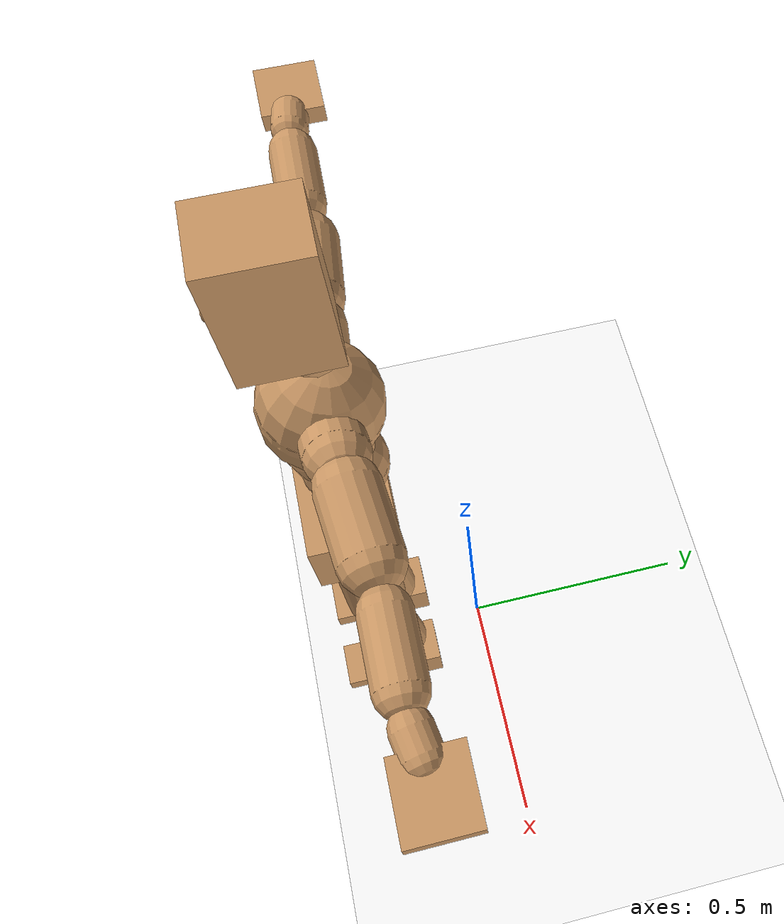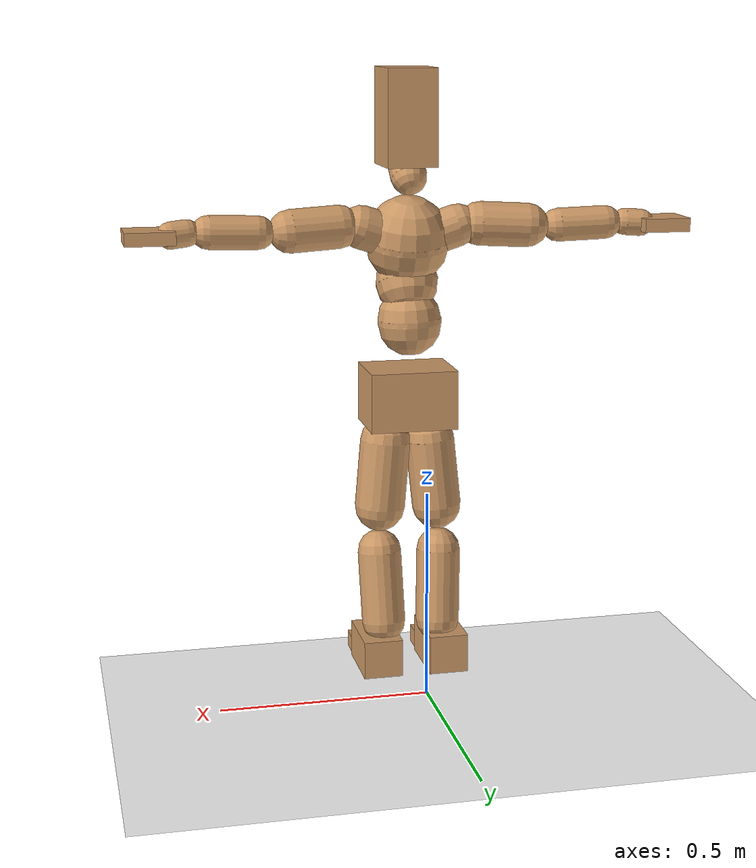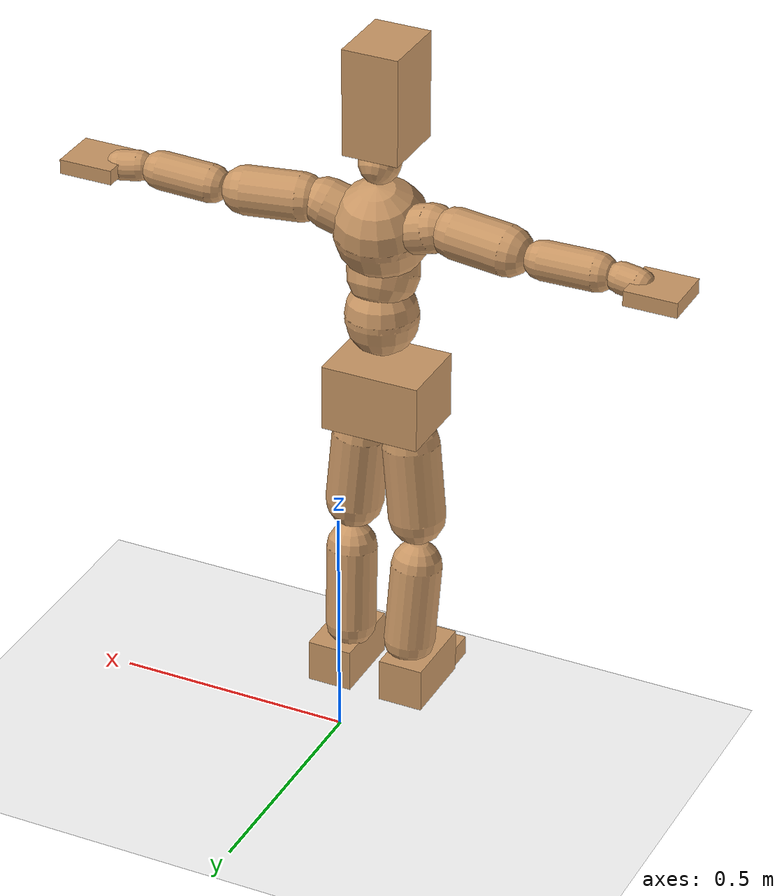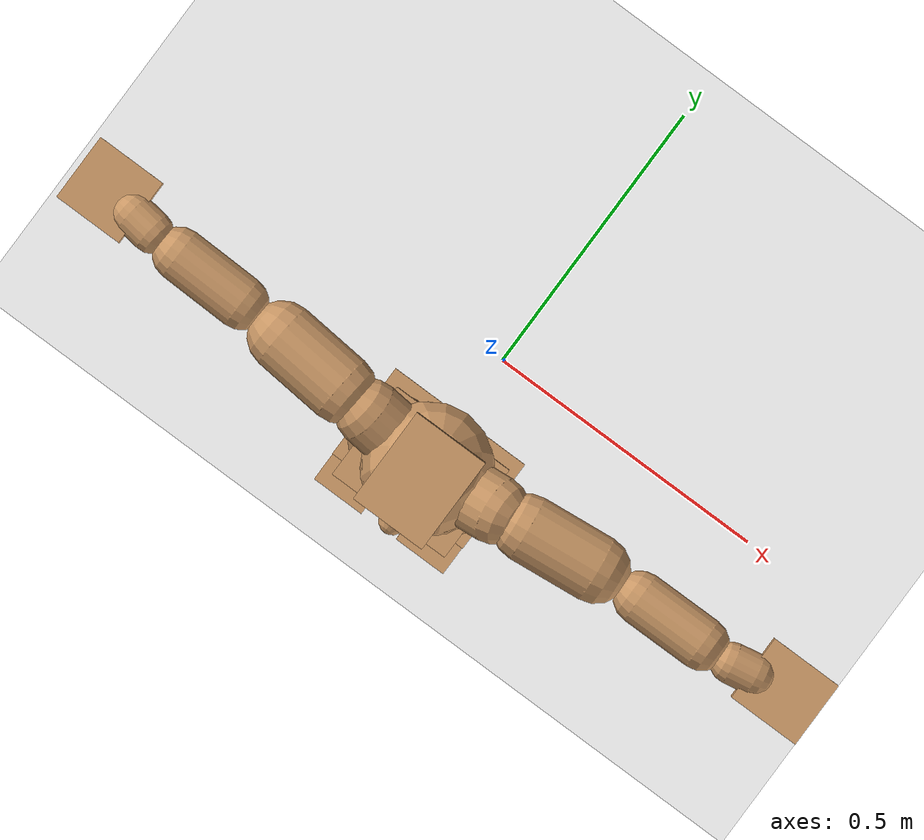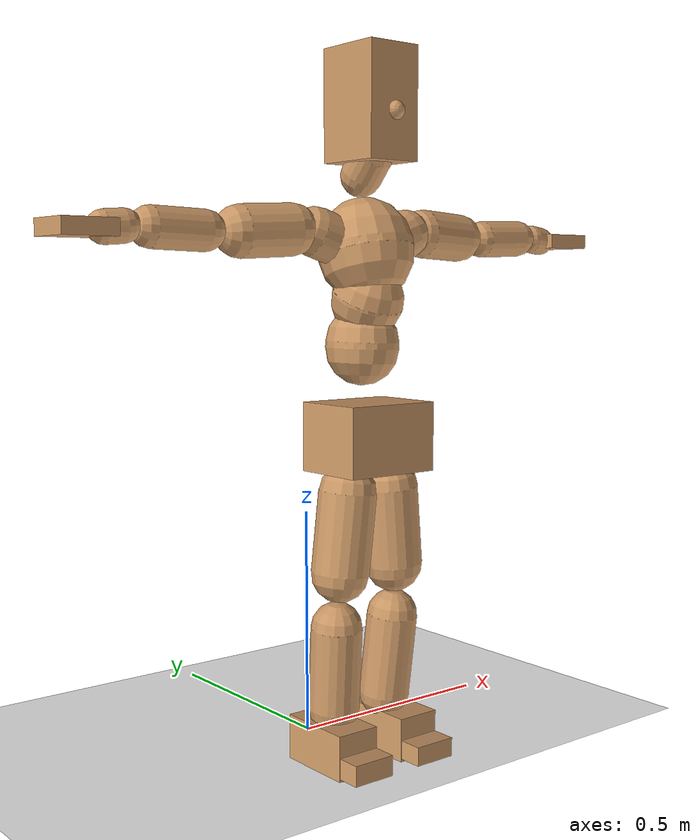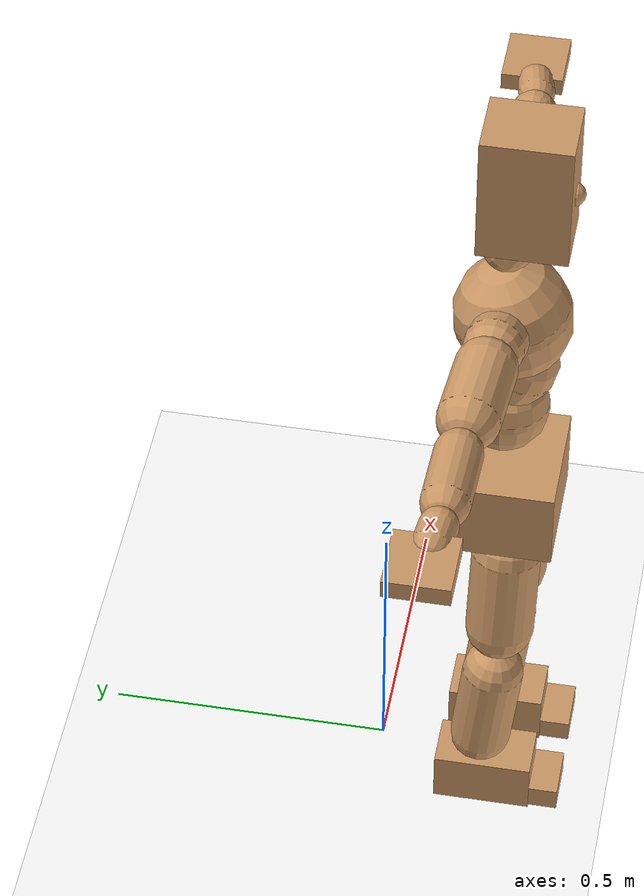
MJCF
<mujoco model="humanoid">
  <option integrator="implicitfast" />

  <visual>
    <global offwidth="1280" offheight="960" />
    <headlight active="1" ambient="0.34 0.34 0.34" diffuse="0.5 0.5 0.5" />
  </visual>

  <default>
    <joint damping="2" stiffness="2" armature="0.01" limited="true" solimplimit="0 .99 .01" />
    <geom condim="1" friction="0.7 0.005 0.0001" solimp=".99 .99 .003" solref="0.015 1" margin="0.001" rgba="0.8 0.6 .4 1" />
    <default class="smplcontact">
      <geom condim="3" friction="1. 0.005 0.0001" solref="0.015 1" solimp="0.98 0.98 0.001" priority="1" />
    </default>
    <default class="stiff_medium">
      <joint stiffness="10" />
    </default>
    <default class="stiff_medium_higher">
      <joint stiffness="50" />
    </default>
    <default class="stiff_high">
      <joint stiffness="100" />
    </default>
  </default>

  <asset>
    <texture type="skybox" builtin="gradient" rgb1="0.99 0.99 0.99" rgb2="0.608 0.828 0.892" width="100" />
    <texture builtin="flat" height="1278" mark="cross" markrgb="1 1 1" name="texgeom" random="0.01" rgb1="0.8 0.6 0.4" rgb2="0.8 0.6 0.4" type="cube" width="127" />
    <texture name="texplane" type="2d" builtin="checker" markrgb="1 1 1" rgb1="0.756 0.772 0.76" rgb2="0.6 0.6 0.6" width="100" height="100" />
    <material name="MatPlane" reflectance="0.5" texture="texplane" texrepeat="1 1" texuniform="true" />
    <material name="geom" texture="texgeom" texuniform="true" />
  </asset>

  <worldbody>
    <light name="tracking_light" pos="0 0 7" dir="0 0 -1" directional="true" cutoff="100" exponent="1" diffuse="1 1 1" specular="0.1 0.1 0.1" mode="trackcom" />
    <camera name="back" pos="0 3 2.4" xyaxes="-1 0 0 0 -1 2" mode="trackcom" />
    <camera name="side" pos="-3 0 2.4" xyaxes="0 -1 0 1 0 2" mode="trackcom" />
    <camera name="front_side" pos="-2.8 -2.8 0.8" xyaxes="0.5 -0.5 0 0.1 0.1 1" mode="trackcom" />
    <geom condim="3" name="floor" pos="0 0 0" rgba="1 1 1 1" size="100 100 .2" type="plane" material="MatPlane" />
    <body name="Pelvis" pos="-0.0018 -0.2233 0.703364" euler="90 0 0">
      <site name="Pelvis" size="0.01" />
      <freejoint name="Pelvis" />
      <geom type="box" pos="-0.0000 -0.0121 -0.0055" size="0.1069 0.0722 0.083" quat="1.0000 0.0000 0.0000 0.0000" density="3165.830099" name="Pelvis" />
      <body name="L_Hip" pos="0.0512563 -0.0674075 -0.005015">
        <joint name="L_Hip_x" type="hinge" pos="0 0 0" axis="1 0 0" stiffness="6.080351326530612" range="-160.0 22.92" class="stiff_medium" damping="8.014355578635632" armature="0.00469489649831775"/>
        <joint name="L_Hip_y" type="hinge" pos="0 0 0" axis="0 1 0" stiffness="6.118900408163266" range="-70.0 70.0" class="stiff_medium" damping="6.474405177482236" armature="0.006850564579591099"/>
        <joint name="L_Hip_z" type="hinge" pos="0 0 0" axis="0 0 1" stiffness="6.115600306122449" range="-28.65 90.0" class="stiff_medium" damping="5.3564579991757" armature="0.0046915496207640605"/>
        <geom type="capsule" density="2040.816327" fromto="0.00508875 -0.0553125 -0.00066375 0.0202075 -0.221398 -0.002655" size="0.0615" name="L_Hip" />
        <body name="L_Knee" pos="0.0252962 -0.27671 -0.00331875">
          <joint name="L_Knee_x" type="hinge" pos="0 0 0" axis="1 0 0" range="-5.16 171.89" damping="4.486905944084203" armature="0.004992045725371326" stiffness="1.260275224489796"/>
          <joint name="L_Knee_y" type="hinge" pos="0 0 0" axis="0 1 0" range="-4.58 6.88" damping="5.357742827119133" armature="0.007269150680716722" stiffness="1.2340423877551019"/>
          <joint name="L_Knee_z" type="hinge" pos="0 0 0" axis="0 0 1" range="-6.88 4.58" damping="4.499596532940237" armature="0.004974648540757286" stiffness="1.271846693877551"/>
          <geom type="capsule" density="1234.567901" fromto="-0.00199125 -0.058705 -0.00641625 -0.00803875 -0.23482 -0.0258125" size="0.0541" name="L_Knee" />
          <body name="L_Ankle" pos="-0.01003 -0.293525 -0.0322288">
            <joint name="L_Ankle_x" type="hinge" pos="0 0 0" axis="1 0 0" range="-45.84 45.84" class="stiff_medium" damping="4.311077671679792" armature="0.00700014434424084" stiffness="7.375002959183673"/>
            <joint name="L_Ankle_y" type="hinge" pos="0 0 0" axis="0 1 0" range="-74.48 22.92" class="stiff_medium" damping="2.1726537987814396" armature="0.007111746177038802" stiffness="7.37500469387755"/>
            <joint name="L_Ankle_z" type="hinge" pos="0 0 0" axis="0 0 1" range="-4.58 4.58" class="stiff_medium" damping="4.563055593809299" armature="0.007842354208817714" stiffness="7.375009183673469"/>
            <geom type="box" pos="0.0171838 -0.0176263 0.0178475" size="0.0483 0.0464 0.085" quat="1.0000 0.0000 0.0000 0.0000" density="449.071558" name="L_Ankle" class="smplcontact" />
            <body name="L_Toe" pos="0.01947 -0.0411525 0.0879838">
              <joint name="L_Toe_x" type="hinge" pos="0 0 0" axis="1 0 0" range="-91.67 22.92" armature="0.008265992273600073" damping="1.5615604894027983" stiffness="1.475002081632653"/>
              <joint name="L_Toe_y" type="hinge" pos="0 0 0" axis="0 1 0" range="-4.58 4.58" armature="0.008778251611742472" damping="1.6092196828189316" stiffness="1.475002142857143"/>
              <joint name="L_Toe_z" type="hinge" pos="0 0 0" axis="0 0 1" range="-4.58 4.58" armature="0.009814011694953264" damping="1.7015091683594339" stiffness="1.4749999999999999"/>
              <geom type="box" pos="-0.0022125 0.00405625 0.01829" size="0.0478 0.02 0.0496" quat="1.0000 0.0000 0.0000 0.0000" density="423.206892" name="L_Toe" class="smplcontact" />
            </body>
          </body>
        </body>
      </body>
      <body name="R_Hip" pos="-0.0499288 -0.0667438 -0.00317125">
        <joint name="R_Hip_x" type="hinge" pos="0 0 0" axis="1 0 0" stiffness="6.080351326530612" range="-160.0 22.92" class="stiff_medium" damping="8.014355578635632" armature="0.00469489649831775"/>
        <joint name="R_Hip_y" type="hinge" pos="0 0 0" axis="0 1 0" stiffness="6.118900408163266" range="-70.0 70.0" class="stiff_medium" damping="6.474405177482236" armature="0.006850564579591099"/>
        <joint name="R_Hip_z" type="hinge" pos="0 0 0" axis="0 0 1" stiffness="6.115600306122449" range="-90.0 28.65" class="stiff_medium" damping="5.3564579991757" armature="0.0046915496207640605"/>
        <geom type="capsule" density="2040.816327" fromto="-0.00567875 -0.0564188 -0.0013275 -0.0225675 -0.225749 -0.00523625" size="0.0606" name="R_Hip" />
        <body name="R_Knee" pos="-0.0282463 -0.282168 -0.00656375">
          <joint name="R_Knee_x" type="hinge" pos="0 0 0" axis="1 0 0" range="-5.16 171.89" damping="4.486905944084203" armature="0.004992045725371326" stiffness="1.260275224489796"/>
          <joint name="R_Knee_y" type="hinge" pos="0 0 0" axis="0 1 0" range="-6.88 4.58" damping="5.357742827119133" armature="0.007269150680716722" stiffness="1.2340423877551019"/>
          <joint name="R_Knee_z" type="hinge" pos="0 0 0" axis="0 0 1" range="-4.58 6.88" damping="4.499596532940237" armature="0.004974648540757286" stiffness="1.271846693877551"/>
          <geom type="capsule" density="1234.567901" fromto="0.00236 -0.0587787 -0.00626875 0.0092925 -0.235041 -0.0249275" size="0.0541" name="R_Knee" />
          <body name="R_Ankle" pos="0.0116525 -0.29382 -0.0311962">
            <joint name="R_Ankle_x" type="hinge" pos="0 0 0" axis="1 0 0" range="-45.84 45.84" class="stiff_medium" damping="4.311077671679792" armature="0.00700014434424084" stiffness="7.375002959183673"/>
            <joint name="R_Ankle_y" type="hinge" pos="0 0 0" axis="0 1 0" range="-22.92 74.48" class="stiff_medium" damping="2.1726537987814396" armature="0.007111746177038802" stiffness="7.37500469387755"/>
            <joint name="R_Ankle_z" type="hinge" pos="0 0 0" axis="0 0 1" range="-4.58 4.58" class="stiff_medium" damping="4.563055593809299" armature="0.007842354208817714" stiffness="7.375009183673469"/>
            <geom type="box" pos="-0.015635 -0.0128325 0.01888" size="0.0483 0.0478 0.0865" quat="1.0000 0.0000 0.0000 0.0000" density="434.700981" name="R_Ankle" class="smplcontact" />
            <body name="R_Toe" pos="-0.0187325 -0.0354737 0.0909338">
              <joint name="R_Toe_x" type="hinge" pos="0 0 0" axis="1 0 0" range="-91.67 22.92" armature="0.008265992273600073" damping="1.5615604894027983" stiffness="1.475002081632653"/>
              <joint name="R_Toe_y" type="hinge" pos="0 0 0" axis="0 1 0" range="-4.58 4.58" armature="0.008778251611742472" damping="1.6092196828189316" stiffness="1.475002142857143"/>
              <joint name="R_Toe_z" type="hinge" pos="0 0 0" axis="0 0 1" range="-4.58 4.58" armature="0.009814011694953264" damping="1.7015091683594339" stiffness="1.4749999999999999"/>
              <geom type="box" pos="0.0030975 0.00331875 0.0167413" size="0.0479 0.0216 0.0493" quat="1.0000 0.0000 0.0000 0.0000" density="407.384095" name="R_Toe" class="smplcontact" />
            </body>
          </body>
        </body>
      </body>
      <body name="Torso" pos="-0.0025 0.109 -0.0267">
        <joint name="Torso_x" type="hinge" pos="0 0 0" axis="1 0 0" range="-25.78 57.3" class="stiff_medium" damping="13.739094397830856" armature="0.009039587391927869" stiffness="9.28079306122449"/>
        <joint name="Torso_y" type="hinge" pos="0 0 0" axis="0 1 0" range="-57.3 57.3" class="stiff_high" damping="13.98716194630191" armature="0.005215485615563974" stiffness="93.7787551020408"/>
        <joint name="Torso_z" type="hinge" pos="0 0 0" axis="0 0 1" range="-34.38 34.38" class="stiff_high" damping="17.14205693161478" armature="0.007729774021891326" stiffness="95.0383914893617"/>
        <geom type="capsule" density="2040.816327" fromto="0.0025 0.0608 0.0005 0.003 0.0743 0.0006" size="0.0769" name="Torso" />
        <body name="Spine" pos="0.0055 0.1352 0.0011">
          <joint name="Spine_x" type="hinge" pos="0 0 0" axis="1 0 0" stiffness="9.148425102040816" range="-25.78 57.3" class="stiff_medium" damping="13.545906247804691" armature="0.008914300623217828"/>
          <joint name="Spine_y" type="hinge" pos="0 0 0" axis="0 1 0" stiffness="9.130711428571427" range="-57.3 57.3" class="stiff_high" damping="5.502811931594803" armature="0.005181848950001503"/>
          <joint name="Spine_z" type="hinge" pos="0 0 0" axis="0 0 1" stiffness="18.07282765957447" range="-34.38 34.38" class="stiff_high" damping="9.433638045609214" armature="0.006839113549347551"/>
          <geom type="capsule" density="2040.816327" fromto="0.0007 0.0238 0.0114 0.0008 0.0291 0.014" size="0.0755" name="Spine" />
          <body name="Chest" pos="0.0015 0.0529 0.0254">
            <joint name="Chest_x" type="hinge" pos="0 0 0" axis="1 0 0" stiffness="8.83404170212766" range="-25.78 57.3" class="stiff_medium" damping="13.263570790134885" armature="0.008850727222753863"/>
            <joint name="Chest_y" type="hinge" pos="0 0 0" axis="0 1 0" stiffness="7.901238536585366" range="-57.3 57.3" class="stiff_high" damping="5.111946503711196" armature="0.0051677019004293745"/>
            <joint name="Chest_z" type="hinge" pos="0 0 0" axis="0 0 1" stiffness="18.12064266666666" range="-34.38 34.38" class="stiff_high" damping="9.174733753764768" armature="0.006451799276115213"/>
            <geom type="capsule" density="2040.816327" fromto="-0.0009 0.0682 -0.0173 -0.001 0.0833 -0.0212" size="0.1002" name="Chest" />
            <body name="Neck" pos="-0.0028 0.2139 -0.0429">
              <joint name="Neck_x" type="hinge" pos="0 0 0" axis="1 0 0" range="-28.65 57.3" class="stiff_medium_higher" damping="10.0" armature="0.01" stiffness="50.0"/>
              <joint name="Neck_y" type="hinge" pos="0 0 0" axis="0 1 0" range="-40.11 40.11" class="stiff_medium_higher" damping="10.0" armature="0.010000000000000002" stiffness="50.0"/>
              <joint name="Neck_z" type="hinge" pos="0 0 0" axis="0 0 1" range="-40.11 40.11" class="stiff_medium_higher" damping="9.999999999999991" armature="0.009999999999999983" stiffness="50.0"/>
              <geom type="capsule" density="1000" fromto="0.001 0.013 0.0103 0.0041 0.052 0.0411" size="0.0436" name="Neck" />
              <body name="Head" pos="0.0052 0.065 0.0513">
                <joint name="Head_x" type="hinge" pos="0 0 0" axis="1 0 0" range="-28.65 57.3" class="stiff_medium_higher" damping="2.0000000000000058" armature="0.010000000000000057" stiffness="50.0"/>
                <joint name="Head_y" type="hinge" pos="0 0 0" axis="0 1 0" range="-40.11 40.11" class="stiff_medium_higher" damping="2.0" armature="0.01" stiffness="50.0"/>
                <joint name="Head_z" type="hinge" pos="0 0 0" axis="0 0 1" range="-40.11 40.11" class="stiff_medium_higher" damping="2.0000000000000036" armature="0.010000000000000035" stiffness="50.0"/>
                <geom type="box" pos="-0.0042 0.0876 -0.0116" size="0.0606 0.1154 0.076" quat="1.0000 0.0000 0.0000 0.0000" density="1018.069894" name="Head" />
                <geom type="capsule" name="nose" size="0.02 0.01" pos="0 0.07 0.05" quat="1 0 0 0" mass="0" contype="0" conaffinity="0" />
              </body>
            </body>
            <body name="L_Thorax" pos="0.059888 0.092492 -0.025916">
              <joint name="L_Thorax_x" type="hinge" pos="0 0 0" axis="1 0 0" range="-10.89 4.58" class="stiff_medium_higher" damping="13.051611804999405" armature="0.006563631215701733" stiffness="32.44099285714286"/>
              <joint name="L_Thorax_y" type="hinge" pos="0 0 0" axis="0 1 0" range="-28.65 17.19" class="stiff_medium_higher" damping="11.385860166956842" armature="0.005031169097955697" stiffness="32.20866989795918"/>
              <joint name="L_Thorax_z" type="hinge" pos="0 0 0" axis="0 0 1" range="-31.51 40.11" class="stiff_medium_higher" damping="11.384736174224175" armature="0.005029775525037268" stiffness="32.211233163265305"/>
              <geom type="capsule" density="1000" fromto="0.013832 0.004636 -0.001368 0.055328 0.018544 -0.005396" size="0.0521" name="L_Thorax" />
              <body name="L_Shoulder" pos="0.06916 0.02318 -0.006764">
                <joint name="L_Shoulder_x" type="hinge" pos="0 0 0" axis="1 0 0" range="-97.4 97.4" class="stiff_medium" damping="4.093651394574323" armature="0.0071369566711115984" stiffness="6.522380816326531"/>
                <joint name="L_Shoulder_y" type="hinge" pos="0 0 0" axis="0 1 0" range="-108.86 80.21" class="stiff_medium" damping="3.4352572713883065" armature="0.005075162037301238" stiffness="6.459012448979591"/>
                <joint name="L_Shoulder_z" type="hinge" pos="0 0 0" axis="0 0 1" range="-97.4 85.94" class="stiff_medium" damping="3.435604799749493" armature="0.005073252715567014" stiffness="6.462750714285715"/>
                <geom type="capsule" density="1000" fromto="0.039444 -0.001976 -0.00418 0.157852 -0.007752 -0.01672" size="0.0517" name="L_Shoulder" />
                <body name="L_Elbow" pos="0.197296 -0.009728 -0.0209">
                  <joint name="L_Elbow_x" type="hinge" pos="0 0 0" axis="1 0 0" range="-17.19 4.58" damping="3.672919303316951" armature="0.008109062824015061" stiffness="1.3308897959183672"/>
                  <joint name="L_Elbow_y" type="hinge" pos="0 0 0" axis="0 1 0" range="-180.0 17.19" damping="2.9664564596508174" armature="0.005292013008933758" stiffness="1.3302860612244898"/>
                  <joint name="L_Elbow_z" type="hinge" pos="0 0 0" axis="0 0 1" range="-100.84 4.58" damping="2.964789355241156" armature="0.0052819886007174155" stiffness="1.3313131224489794"/>
                  <geom type="capsule" density="1000" fromto="0.037848 0.001368 -0.000152 0.151544 0.005472 -0.000684" size="0.0405" name="L_Elbow" />
                  <body name="L_Wrist" pos="0.189392 0.00684 -0.000912">
                    <joint name="L_Wrist_x" type="hinge" pos="0 0 0" axis="1 0 0" range="-180.0 22.92" armature="0.008519058728557417" damping="1.5739325350061382" stiffness="1.453953836734694"/>
                    <joint name="L_Wrist_y" type="hinge" pos="0 0 0" axis="0 1 0" range="-17.19 17.19" armature="0.006127105897480822" damping="1.3303489554369001" stiffness="1.4442612653061224"/>
                    <joint name="L_Wrist_z" type="hinge" pos="0 0 0" axis="0 0 1" range="-22.92 22.92" armature="0.005990519036142286" damping="1.3172163247934898" stiffness="1.4481707142857143"/>
                    <geom type="capsule" density="1000" fromto="0.012768 -0.001216 -0.00228 0.051072 -0.00494 -0.00912" size="0.0318" name="L_Wrist" class="smplcontact" />
                    <body name="L_Hand" pos="0.06384 -0.006232 -0.011324">
                      <joint name="L_Hand_x" type="hinge" pos="0 0 0" axis="1 0 0" range="-17.19 17.19" armature="0.009815976537960928" damping="1.727442290654053" stiffness="1.5199999999999998"/>
                      <joint name="L_Hand_y" type="hinge" pos="0 0 0" axis="0 1 0" range="-51.57 51.57" armature="0.00777449011428276" damping="1.5373499909721138" stiffness="1.5199999999999998"/>
                      <joint name="L_Hand_z" type="hinge" pos="0 0 0" axis="0 0 1" range="-91.67 91.67" armature="0.00723030401505631" damping="1.4825695331339834" stiffness="1.5199999999999998"/>
                      <geom type="box" pos="0.037468 0.00076 -0.004408" size="0.0585 0.0158 0.0538" quat="1.0000 0.0000 0.0000 0.0000" density="400.552564" name="L_Hand" class="smplcontact" />
                    </body>
                  </body>
                </body>
              </body>
            </body>
            <body name="R_Thorax" pos="-0.062168 0.090288 -0.029336">
              <joint name="R_Thorax_x" type="hinge" pos="0 0 0" axis="1 0 0" range="-10.89 4.58" class="stiff_medium_higher" damping="13.051611804999405" armature="0.006563631215701733" stiffness="32.44099285714286"/>
              <joint name="R_Thorax_y" type="hinge" pos="0 0 0" axis="0 1 0" range="-17.19 28.65" class="stiff_medium_higher" damping="11.385860166956842" armature="0.005031169097955697" stiffness="32.20866989795918"/>
              <joint name="R_Thorax_z" type="hinge" pos="0 0 0" axis="0 0 1" range="-40.11 31.51" class="stiff_medium_higher" damping="11.384736174224175" armature="0.005029775525037268" stiffness="32.211233163265305"/>
              <geom type="capsule" density="1000" fromto="-0.014592 0.00494 -0.001368 -0.058368 0.01976 -0.005548" size="0.0511" name="R_Thorax" />
              <body name="R_Shoulder" pos="-0.07296 0.024776 -0.006916">
                <joint name="R_Shoulder_x" type="hinge" pos="0 0 0" axis="1 0 0" range="-97.4 97.4" class="stiff_medium" damping="4.093651394574323" armature="0.0071369566711115984" stiffness="6.522380816326531"/>
                <joint name="R_Shoulder_y" type="hinge" pos="0 0 0" axis="0 1 0" range="-80.21 108.86" class="stiff_medium" damping="3.4352572713883065" armature="0.005075162037301238" stiffness="6.459012448979591"/>
                <joint name="R_Shoulder_z" type="hinge" pos="0 0 0" axis="0 0 1" range="-85.94 97.4" class="stiff_medium" damping="3.435604799749493" armature="0.005073252715567014" stiffness="6.462750714285715"/>
                <geom type="capsule" density="1000" fromto="-0.038532 -0.002052 -0.003268 -0.15428 -0.008132 -0.012996" size="0.0531" name="R_Shoulder" />
                <body name="R_Elbow" pos="-0.192812 -0.010108 -0.016264">
                  <joint name="R_Elbow_x" type="hinge" pos="0 0 0" axis="1 0 0" range="-17.19 4.58" damping="3.672919303316951" armature="0.008109062824015061" stiffness="1.3308897959183672"/>
                  <joint name="R_Elbow_y" type="hinge" pos="0 0 0" axis="0 1 0" range="-17.19 180.0" damping="2.9664564596508174" armature="0.005292013008933758" stiffness="1.3302860612244898"/>
                  <joint name="R_Elbow_z" type="hinge" pos="0 0 0" axis="0 0 1" range="-4.58 100.84" damping="2.964789355241156" armature="0.0052819886007174155" stiffness="1.3313131224489794"/>
                  <geom type="capsule" density="1000" fromto="-0.038836 0.001216 -0.000836 -0.155192 0.004712 -0.003344" size="0.0408" name="R_Elbow" />
                  <body name="R_Wrist" pos="-0.194028 0.005928 -0.004256">
                    <joint name="R_Wrist_x" type="hinge" pos="0 0 0" axis="1 0 0" range="-180.0 22.92" armature="0.008519058728557417" damping="1.5739325350061382" stiffness="1.453953836734694"/>
                    <joint name="R_Wrist_y" type="hinge" pos="0 0 0" axis="0 1 0" range="-17.19 17.19" armature="0.006127105897480822" damping="1.3303489554369001" stiffness="1.4442612653061224"/>
                    <joint name="R_Wrist_z" type="hinge" pos="0 0 0" axis="0 0 1" range="-22.92 22.92" armature="0.005990519036142286" damping="1.3172163247934898" stiffness="1.4481707142857143"/>
                    <geom type="capsule" density="1000" fromto="-0.012844 -0.000912 -0.001596 -0.051452 -0.003724 -0.006308" size="0.0326" name="R_Wrist" class="smplcontact" />
                    <body name="R_Hand" pos="-0.064296 -0.004636 -0.007828">
                      <joint name="R_Hand_x" type="hinge" pos="0 0 0" axis="1 0 0" range="-17.19 17.19" armature="0.009815976537960928" damping="1.727442290654053" stiffness="1.5199999999999998"/>
                      <joint name="R_Hand_y" type="hinge" pos="0 0 0" axis="0 1 0" range="-51.57 51.57" armature="0.00777449011428276" damping="1.5373499909721138" stiffness="1.5199999999999998"/>
                      <joint name="R_Hand_z" type="hinge" pos="0 0 0" axis="0 0 1" range="-91.67 91.67" armature="0.00723030401505631" damping="1.4825695331339834" stiffness="1.5199999999999998"/>
                      <geom type="box" pos="-0.035112 -0.000684 -0.006004" size="0.0569 0.0164 0.0546" quat="1.0000 0.0000 0.0000 0.0000" density="403.679611" name="R_Hand" class="smplcontact" />
                    </body>
                  </body>
                </body>
              </body>
            </body>
          </body>
        </body>
      </body>
    </body>
  </worldbody>
  <actuator>
    <general name="L_Hip_x" joint="L_Hip_x" biastype="affine" gainprm="174.70677363862805" biasprm="-130.92501930014834 -109.44632387755101 -1.0685807438180843" ctrllimited="true" ctrlrange="-1 1" forcerange="-218.89264775510202 218.89264775510202" />
    <general name="L_Hip_y" joint="L_Hip_y" biastype="affine" gainprm="134.56164799233312" biasprm="0.0 -110.14020734693878 -1.2948810354964473" ctrllimited="true" ctrlrange="-1 1" forcerange="-220.28041469387756 220.28041469387756" />
    <general name="L_Hip_z" joint="L_Hip_z" biastype="affine" gainprm="113.97949102693926" biasprm="58.935033919112705 -110.08080551020407 -1.07129159983514" ctrllimited="true" ctrlrange="-1 1" forcerange="-220.16161102040815 220.16161102040815" />
    <general name="L_Knee_x" joint="L_Knee_x" biastype="affine" gainprm="175.24724975639236" biasprm="165.03232957855576 -113.42477020408163 -1.1217264860210507" ctrllimited="true" ctrlrange="-1 1" forcerange="-226.84954040816325 226.84954040816325" />
    <general name="L_Knee_y" joint="L_Knee_y" biastype="affine" gainprm="11.107199601324877" biasprm="2.229193637264155 -111.06381489795918 -1.3394357067797833" ctrllimited="true" ctrlrange="-1 1" forcerange="-222.12762979591835 222.12762979591835" />
    <general name="L_Knee_z" joint="L_Knee_z" biastype="affine" gainprm="11.447463418887487" biasprm="-2.297483932237454 -114.46620244897959 -1.1248991332350593" ctrllimited="true" ctrlrange="-1 1" forcerange="-228.93240489795917 228.93240489795917" />
    <general name="L_Ankle_x" joint="L_Ankle_x" biastype="affine" gainprm="53.10393272764696" biasprm="0.0 -66.37502663265306 -1.4370258905599307" ctrllimited="true" ctrlrange="-1 1" forcerange="-132.75005326530612 132.75005326530612" />
    <general name="L_Ankle_y" joint="L_Ankle_y" biastype="affine" gainprm="56.417149479368945" biasprm="-29.865176870187504 -66.37504224489794 -1.448435865854293" ctrllimited="true" ctrlrange="-1 1" forcerange="-132.75008448979588 132.75008448979588" />
    <general name="L_Ankle_z" joint="L_Ankle_z" biastype="affine" gainprm="5.3057638997931535" biasprm="0.0 -66.37508265306121 -1.5210185312697664" ctrllimited="true" ctrlrange="-1 1" forcerange="-132.75016530612243 132.75016530612243" />
    <general name="L_Toe_x" joint="L_Toe_x" biastype="affine" gainprm="53.09935250854698" biasprm="-31.857757962846712 -53.100074938775506 -0.6246241957611194" ctrllimited="true" ctrlrange="-1 1" forcerange="-106.20014987755101 106.20014987755101" />
    <general name="L_Toe_y" joint="L_Toe_y" biastype="affine" gainprm="4.24461200076275" biasprm="0.0 -53.100077142857145 -0.6436878731275727" ctrllimited="true" ctrlrange="-1 1" forcerange="-106.20015428571429 106.20015428571429" />
    <general name="L_Toe_z" joint="L_Toe_z" biastype="affine" gainprm="4.244605834265169" biasprm="0.0 -53.099999999999994 -0.6806036673437736" ctrllimited="true" ctrlrange="-1 1" forcerange="-106.19999999999999 106.19999999999999" />
    <general name="R_Hip_x" joint="R_Hip_x" biastype="affine" gainprm="174.70677363862805" biasprm="-130.92501930014834 -109.44632387755101 -1.0685807438180843" ctrllimited="true" ctrlrange="-1 1" forcerange="-218.89264775510202 218.89264775510202" />
    <general name="R_Hip_y" joint="R_Hip_y" biastype="affine" gainprm="134.56164799233312" biasprm="0.0 -110.14020734693878 -1.2948810354964473" ctrllimited="true" ctrlrange="-1 1" forcerange="-220.28041469387756 220.28041469387756" />
    <general name="R_Hip_z" joint="R_Hip_z" biastype="affine" gainprm="113.97949102693926" biasprm="-58.935033919112705 -110.08080551020407 -1.07129159983514" ctrllimited="true" ctrlrange="-1 1" forcerange="-220.16161102040815 220.16161102040815" />
    <general name="R_Knee_x" joint="R_Knee_x" biastype="affine" gainprm="175.24724975639236" biasprm="165.03232957855576 -113.42477020408163 -1.1217264860210507" ctrllimited="true" ctrlrange="-1 1" forcerange="-226.84954040816325 226.84954040816325" />
    <general name="R_Knee_y" joint="R_Knee_y" biastype="affine" gainprm="11.107199601324877" biasprm="-2.229193637264155 -111.06381489795918 -1.3394357067797833" ctrllimited="true" ctrlrange="-1 1" forcerange="-222.12762979591835 222.12762979591835" />
    <general name="R_Knee_z" joint="R_Knee_z" biastype="affine" gainprm="11.447463418887487" biasprm="2.297483932237454 -114.46620244897959 -1.1248991332350593" ctrllimited="true" ctrlrange="-1 1" forcerange="-228.93240489795917 228.93240489795917" />
    <general name="R_Ankle_x" joint="R_Ankle_x" biastype="affine" gainprm="53.10393272764696" biasprm="0.0 -66.37502663265306 -1.4370258905599307" ctrllimited="true" ctrlrange="-1 1" forcerange="-132.75005326530612 132.75005326530612" />
    <general name="R_Ankle_y" joint="R_Ankle_y" biastype="affine" gainprm="56.417149479368945" biasprm="29.865176870187504 -66.37504224489794 -1.448435865854293" ctrllimited="true" ctrlrange="-1 1" forcerange="-132.75008448979588 132.75008448979588" />
    <general name="R_Ankle_z" joint="R_Ankle_z" biastype="affine" gainprm="5.3057638997931535" biasprm="0.0 -66.37508265306121 -1.5210185312697664" ctrllimited="true" ctrlrange="-1 1" forcerange="-132.75016530612243 132.75016530612243" />
    <general name="R_Toe_x" joint="R_Toe_x" biastype="affine" gainprm="53.09935250854698" biasprm="-31.857757962846712 -53.100074938775506 -0.6246241957611194" ctrllimited="true" ctrlrange="-1 1" forcerange="-106.20014987755101 106.20014987755101" />
    <general name="R_Toe_y" joint="R_Toe_y" biastype="affine" gainprm="4.24461200076275" biasprm="0.0 -53.100077142857145 -0.6436878731275727" ctrllimited="true" ctrlrange="-1 1" forcerange="-106.20015428571429 106.20015428571429" />
    <general name="R_Toe_z" joint="R_Toe_z" biastype="affine" gainprm="4.244605834265169" biasprm="0.0 -53.099999999999994 -0.6806036673437736" ctrllimited="true" ctrlrange="-1 1" forcerange="-106.19999999999999 106.19999999999999" />
    <general name="Torso_x" joint="Torso_x" biastype="affine" gainprm="161.48797571042263" biasprm="61.26746502639047 -222.73903346938778 -3.6637585060882283" ctrllimited="true" ctrlrange="-1 1" forcerange="-334.10855020408167 334.10855020408167" />
    <general name="Torso_y" joint="Torso_y" biastype="affine" gainprm="225.08559114180494" biasprm="0.0 -225.06901224489795 -2.797432389260382" ctrllimited="true" ctrlrange="-1 1" forcerange="-337.6035183673469 337.6035183673469" />
    <general name="Torso_z" joint="Torso_z" biastype="affine" gainprm="136.86536469548682" biasprm="0.0 -228.09213957446806 -3.428411386322956" ctrllimited="true" ctrlrange="-1 1" forcerange="-342.1382093617021 342.1382093617021" />
    <general name="Spine_x" joint="Spine_x" biastype="affine" gainprm="159.18474217892623" biasprm="60.393633527681196 -219.5622024489796 -3.612241666081251" ctrllimited="true" ctrlrange="-1 1" forcerange="-329.3433036734694 329.3433036734694" />
    <general name="Spine_y" joint="Spine_y" biastype="affine" gainprm="219.15321622780948" biasprm="0.0 -219.13707428571425 -2.7514059657974017" ctrllimited="true" ctrlrange="-1 1" forcerange="-328.7056114285714 328.7056114285714" />
    <general name="Spine_z" joint="Spine_z" biastype="affine" gainprm="130.13394429046193" biasprm="0.0 -216.87393191489366 -3.1445460152030713" ctrllimited="true" ctrlrange="-1 1" forcerange="-325.3108978723405 325.3108978723405" />
    <general name="Chest_x" joint="Chest_x" biastype="affine" gainprm="153.7143972941716" biasprm="58.318221024461806 -212.01700085106387 -3.536952210702636" ctrllimited="true" ctrlrange="-1 1" forcerange="-318.0255012765958 318.0255012765958" />
    <general name="Chest_y" joint="Chest_y" biastype="affine" gainprm="189.64369326769022" biasprm="0.0 -189.62972487804876 -2.555973251855598" ctrllimited="true" ctrlrange="-1 1" forcerange="-284.44458731707317 284.44458731707317" />
    <general name="Chest_z" joint="Chest_z" biastype="affine" gainprm="130.47823770078983" biasprm="0.0 -217.44771199999994 -3.0582445845882558" ctrllimited="true" ctrlrange="-1 1" forcerange="-326.1715679999999 326.1715679999999" />
    <general name="Neck_x" joint="Neck_x" biastype="affine" gainprm="27.00198885760427" biasprm="9.000662952534757 -36.0 -0.8" ctrllimited="true" ctrlrange="-1 1" forcerange="-72.0 72.0" />
    <general name="Neck_y" joint="Neck_y" biastype="affine" gainprm="25.20185626709732" biasprm="0.0 -36.0 -0.8" ctrllimited="true" ctrlrange="-1 1" forcerange="-72.0 72.0" />
    <general name="Neck_z" joint="Neck_z" biastype="affine" gainprm="25.20185626709732" biasprm="0.0 -36.0 -0.7999999999999994" ctrllimited="true" ctrlrange="-1 1" forcerange="-72.0 72.0" />
    <general name="Head_x" joint="Head_x" biastype="affine" gainprm="18.001325905069514" biasprm="6.000441968356505 -24.0 -0.8000000000000024" ctrllimited="true" ctrlrange="-1 1" forcerange="-48.0 48.0" />
    <general name="Head_y" joint="Head_y" biastype="affine" gainprm="16.801237511398213" biasprm="0.0 -24.0 -0.8" ctrllimited="true" ctrlrange="-1 1" forcerange="-48.0 48.0" />
    <general name="Head_z" joint="Head_z" biastype="affine" gainprm="16.801237511398213" biasprm="0.0 -24.0 -0.8000000000000015" ctrllimited="true" ctrlrange="-1 1" forcerange="-48.0 48.0" />
    <general name="L_Thorax_x" joint="L_Thorax_x" biastype="affine" gainprm="10.510976489332725" biasprm="-4.287282588732355 -77.85838285714286 -1.0441289443999524" ctrllimited="true" ctrlrange="-1 1" forcerange="-155.7167657142857 155.7167657142857" />
    <general name="L_Thorax_y" joint="L_Thorax_y" biastype="affine" gainprm="30.92260073610482" biasprm="-7.730650184026205 -77.30080775510204 -0.9108688133565475" ctrllimited="true" ctrlrange="-1 1" forcerange="-154.60161551020408 154.60161551020408" />
    <general name="L_Thorax_z" joint="L_Thorax_z" biastype="affine" gainprm="48.31703567889454" biasprm="5.801822212210179 -77.30695959183674 -0.910778893937934" ctrllimited="true" ctrlrange="-1 1" forcerange="-154.6139191836735 154.6139191836735" />
    <general name="L_Shoulder_x" joint="L_Shoulder_x" biastype="affine" gainprm="53.221083737114085" biasprm="0.0 -31.307427918367345 -1.0916403718864862" ctrllimited="true" ctrlrange="-1 1" forcerange="-62.61485583673469 62.61485583673469" />
    <general name="L_Shoulder_y" joint="L_Shoulder_y" biastype="affine" gainprm="51.15373568273665" biasprm="-7.751385874598853 -31.003259755102036 -0.9160686057035484" ctrllimited="true" ctrlrange="-1 1" forcerange="-62.00651951020407 62.00651951020407" />
    <general name="L_Shoulder_z" joint="L_Shoulder_z" biastype="affine" gainprm="49.63216736841566" biasprm="-3.102348849362085 -31.02120342857143 -0.9161612799331982" ctrllimited="true" ctrlrange="-1 1" forcerange="-62.04240685714286 62.04240685714286" />
    <general name="L_Elbow_x" joint="L_Elbow_x" biastype="affine" gainprm="9.102284319379796" biasprm="-5.272384256654996 -47.91203265306122 -0.5876670885307121" ctrllimited="true" ctrlrange="-1 1" forcerange="-95.82406530612244 95.82406530612244" />
    <general name="L_Elbow_y" joint="L_Elbow_y" biastype="affine" gainprm="82.40997838860564" biasprm="-68.04183062756168 -47.89029820408163 -0.47463303354413083" ctrllimited="true" ctrlrange="-1 1" forcerange="-95.78059640816326 95.78059640816326" />
    <general name="L_Elbow_z" joint="L_Elbow_z" biastype="affine" gainprm="44.091319641745486" biasprm="-40.26020137274161 -47.927272408163255 -0.47436629683858506" ctrllimited="true" ctrlrange="-1 1" forcerange="-95.85454481632651 95.85454481632651" />
    <general name="L_Wrist_x" joint="L_Wrist_x" biastype="affine" gainprm="15.448065200832389" biasprm="-11.95831895203406 -8.723723020408164 -0.6295730140024554" ctrllimited="true" ctrlrange="-1 1" forcerange="-17.447446040816327 17.447446040816327" />
    <general name="L_Wrist_y" joint="L_Wrist_y" biastype="affine" gainprm="2.599861772884358" biasprm="0.0 -8.665567591836734 -0.5321395821747601" ctrllimited="true" ctrlrange="-1 1" forcerange="-17.331135183673467 17.331135183673467" />
    <general name="L_Wrist_z" joint="L_Wrist_z" biastype="affine" gainprm="3.4758657325379274" biasprm="0.0 -8.689024285714286 -0.5268865299173959" ctrllimited="true" ctrlrange="-1 1" forcerange="-17.37804857142857 17.37804857142857" />
    <general name="L_Hand_x" joint="L_Hand_x" biastype="affine" gainprm="2.7362015375705666" biasprm="0.0 -9.12 -0.6909769162616213" ctrllimited="true" ctrlrange="-1 1" forcerange="-18.24 18.24" />
    <general name="L_Hand_y" joint="L_Hand_y" biastype="affine" gainprm="8.208604612711698" biasprm="0.0 -9.12 -0.6149399963888456" ctrllimited="true" ctrlrange="-1 1" forcerange="-18.24 18.24" />
    <general name="L_Hand_z" joint="L_Hand_z" biastype="affine" gainprm="14.5914831267652" biasprm="0.0 -9.12 -0.5930278132535934" ctrllimited="true" ctrlrange="-1 1" forcerange="-18.24 18.24" />
    <general name="R_Thorax_x" joint="R_Thorax_x" biastype="affine" gainprm="10.510976489332725" biasprm="-4.287282588732355 -77.85838285714286 -1.0441289443999524" ctrllimited="true" ctrlrange="-1 1" forcerange="-155.7167657142857 155.7167657142857" />
    <general name="R_Thorax_y" joint="R_Thorax_y" biastype="affine" gainprm="30.92260073610482" biasprm="7.7306501840262 -77.30080775510204 -0.9108688133565475" ctrllimited="true" ctrlrange="-1 1" forcerange="-154.60161551020408 154.60161551020408" />
    <general name="R_Thorax_z" joint="R_Thorax_z" biastype="affine" gainprm="48.31703567889454" biasprm="-5.801822212210179 -77.30695959183674 -0.910778893937934" ctrllimited="true" ctrlrange="-1 1" forcerange="-154.6139191836735 154.6139191836735" />
    <general name="R_Shoulder_x" joint="R_Shoulder_x" biastype="affine" gainprm="53.221083737114085" biasprm="0.0 -31.307427918367345 -1.0916403718864862" ctrllimited="true" ctrlrange="-1 1" forcerange="-62.61485583673469 62.61485583673469" />
    <general name="R_Shoulder_y" joint="R_Shoulder_y" biastype="affine" gainprm="51.15373568273665" biasprm="7.751385874598853 -31.003259755102036 -0.9160686057035484" ctrllimited="true" ctrlrange="-1 1" forcerange="-62.00651951020407 62.00651951020407" />
    <general name="R_Shoulder_z" joint="R_Shoulder_z" biastype="affine" gainprm="49.63216736841566" biasprm="3.102348849362078 -31.02120342857143 -0.9161612799331982" ctrllimited="true" ctrlrange="-1 1" forcerange="-62.04240685714286 62.04240685714286" />
    <general name="R_Elbow_x" joint="R_Elbow_x" biastype="affine" gainprm="9.102284319379796" biasprm="-5.272384256654996 -47.91203265306122 -0.5876670885307121" ctrllimited="true" ctrlrange="-1 1" forcerange="-95.82406530612244 95.82406530612244" />
    <general name="R_Elbow_y" joint="R_Elbow_y" biastype="affine" gainprm="82.40997838860564" biasprm="68.04183062756168 -47.89029820408163 -0.47463303354413083" ctrllimited="true" ctrlrange="-1 1" forcerange="-95.78059640816326 95.78059640816326" />
    <general name="R_Elbow_z" joint="R_Elbow_z" biastype="affine" gainprm="44.091319641745486" biasprm="40.260201372741605 -47.927272408163255 -0.47436629683858506" ctrllimited="true" ctrlrange="-1 1" forcerange="-95.85454481632651 95.85454481632651" />
    <general name="R_Wrist_x" joint="R_Wrist_x" biastype="affine" gainprm="15.448065200832389" biasprm="-11.95831895203406 -8.723723020408164 -0.6295730140024554" ctrllimited="true" ctrlrange="-1 1" forcerange="-17.447446040816327 17.447446040816327" />
    <general name="R_Wrist_y" joint="R_Wrist_y" biastype="affine" gainprm="2.599861772884358" biasprm="0.0 -8.665567591836734 -0.5321395821747601" ctrllimited="true" ctrlrange="-1 1" forcerange="-17.331135183673467 17.331135183673467" />
    <general name="R_Wrist_z" joint="R_Wrist_z" biastype="affine" gainprm="3.4758657325379274" biasprm="0.0 -8.689024285714286 -0.5268865299173959" ctrllimited="true" ctrlrange="-1 1" forcerange="-17.37804857142857 17.37804857142857" />
    <general name="R_Hand_x" joint="R_Hand_x" biastype="affine" gainprm="2.7362015375705666" biasprm="0.0 -9.12 -0.6909769162616213" ctrllimited="true" ctrlrange="-1 1" forcerange="-18.24 18.24" />
    <general name="R_Hand_y" joint="R_Hand_y" biastype="affine" gainprm="8.208604612711698" biasprm="0.0 -9.12 -0.6149399963888456" ctrllimited="true" ctrlrange="-1 1" forcerange="-18.24 18.24" />
    <general name="R_Hand_z" joint="R_Hand_z" biastype="affine" gainprm="14.5914831267652" biasprm="0.0 -9.12 -0.5930278132535934" ctrllimited="true" ctrlrange="-1 1" forcerange="-18.24 18.24" />
  </actuator>
  <contact>
    <exclude body1="Torso" body2="Chest" />
    <exclude body1="Head" body2="Chest" />
    <exclude body1="R_Knee" body2="R_Toe" />
    <exclude body1="R_Knee" body2="L_Ankle" />
    <exclude body1="R_Knee" body2="L_Toe" />
    <exclude body1="L_Knee" body2="L_Toe" />
    <exclude body1="L_Knee" body2="R_Ankle" />
    <exclude body1="L_Knee" body2="R_Toe" />
    <exclude body1="L_Shoulder" body2="Chest" />
    <exclude body1="R_Shoulder" body2="Chest" />
  </contact>
  <sensor>
    <framelinvel name="sensor_Pelvis_framelinvel" objtype="xbody" objname="Pelvis" />
    <framelinvel name="sensor_L_Hip_framelinvel" objtype="xbody" objname="L_Hip" />
    <framelinvel name="sensor_L_Knee_framelinvel" objtype="xbody" objname="L_Knee" />
    <framelinvel name="sensor_L_Ankle_framelinvel" objtype="xbody" objname="L_Ankle" />
    <framelinvel name="sensor_L_Toe_framelinvel" objtype="xbody" objname="L_Toe" />
    <framelinvel name="sensor_R_Hip_framelinvel" objtype="xbody" objname="R_Hip" />
    <framelinvel name="sensor_R_Knee_framelinvel" objtype="xbody" objname="R_Knee" />
    <framelinvel name="sensor_R_Ankle_framelinvel" objtype="xbody" objname="R_Ankle" />
    <framelinvel name="sensor_R_Toe_framelinvel" objtype="xbody" objname="R_Toe" />
    <framelinvel name="sensor_Torso_framelinvel" objtype="xbody" objname="Torso" />
    <framelinvel name="sensor_Spine_framelinvel" objtype="xbody" objname="Spine" />
    <framelinvel name="sensor_Chest_framelinvel" objtype="xbody" objname="Chest" />
    <framelinvel name="sensor_Neck_framelinvel" objtype="xbody" objname="Neck" />
    <framelinvel name="sensor_Head_framelinvel" objtype="xbody" objname="Head" />
    <framelinvel name="sensor_L_Thorax_framelinvel" objtype="xbody" objname="L_Thorax" />
    <framelinvel name="sensor_L_Shoulder_framelinvel" objtype="xbody" objname="L_Shoulder" />
    <framelinvel name="sensor_L_Elbow_framelinvel" objtype="xbody" objname="L_Elbow" />
    <framelinvel name="sensor_L_Wrist_framelinvel" objtype="xbody" objname="L_Wrist" />
    <framelinvel name="sensor_L_Hand_framelinvel" objtype="xbody" objname="L_Hand" />
    <framelinvel name="sensor_R_Thorax_framelinvel" objtype="xbody" objname="R_Thorax" />
    <framelinvel name="sensor_R_Shoulder_framelinvel" objtype="xbody" objname="R_Shoulder" />
    <framelinvel name="sensor_R_Elbow_framelinvel" objtype="xbody" objname="R_Elbow" />
    <framelinvel name="sensor_R_Wrist_framelinvel" objtype="xbody" objname="R_Wrist" />
    <framelinvel name="sensor_R_Hand_framelinvel" objtype="xbody" objname="R_Hand" />
    <frameangvel name="sensor_Pelvis_frameangvel" objtype="xbody" objname="Pelvis" />
    <frameangvel name="sensor_L_Hip_frameangvel" objtype="xbody" objname="L_Hip" />
    <frameangvel name="sensor_L_Knee_frameangvel" objtype="xbody" objname="L_Knee" />
    <frameangvel name="sensor_L_Ankle_frameangvel" objtype="xbody" objname="L_Ankle" />
    <frameangvel name="sensor_L_Toe_frameangvel" objtype="xbody" objname="L_Toe" />
    <frameangvel name="sensor_R_Hip_frameangvel" objtype="xbody" objname="R_Hip" />
    <frameangvel name="sensor_R_Knee_frameangvel" objtype="xbody" objname="R_Knee" />
    <frameangvel name="sensor_R_Ankle_frameangvel" objtype="xbody" objname="R_Ankle" />
    <frameangvel name="sensor_R_Toe_frameangvel" objtype="xbody" objname="R_Toe" />
    <frameangvel name="sensor_Torso_frameangvel" objtype="xbody" objname="Torso" />
    <frameangvel name="sensor_Spine_frameangvel" objtype="xbody" objname="Spine" />
    <frameangvel name="sensor_Chest_frameangvel" objtype="xbody" objname="Chest" />
    <frameangvel name="sensor_Neck_frameangvel" objtype="xbody" objname="Neck" />
    <frameangvel name="sensor_Head_frameangvel" objtype="xbody" objname="Head" />
    <frameangvel name="sensor_L_Thorax_frameangvel" objtype="xbody" objname="L_Thorax" />
    <frameangvel name="sensor_L_Shoulder_frameangvel" objtype="xbody" objname="L_Shoulder" />
    <frameangvel name="sensor_L_Elbow_frameangvel" objtype="xbody" objname="L_Elbow" />
    <frameangvel name="sensor_L_Wrist_frameangvel" objtype="xbody" objname="L_Wrist" />
    <frameangvel name="sensor_L_Hand_frameangvel" objtype="xbody" objname="L_Hand" />
    <frameangvel name="sensor_R_Thorax_frameangvel" objtype="xbody" objname="R_Thorax" />
    <frameangvel name="sensor_R_Shoulder_frameangvel" objtype="xbody" objname="R_Shoulder" />
    <frameangvel name="sensor_R_Elbow_frameangvel" objtype="xbody" objname="R_Elbow" />
    <frameangvel name="sensor_R_Wrist_frameangvel" objtype="xbody" objname="R_Wrist" />
    <frameangvel name="sensor_R_Hand_frameangvel" objtype="xbody" objname="R_Hand" />
    <subtreelinvel name="Chest_subtreelinvel" body="Chest" />
    <gyro name="Pelvis_gyro" site="Pelvis" />
  </sensor>
</mujoco>
